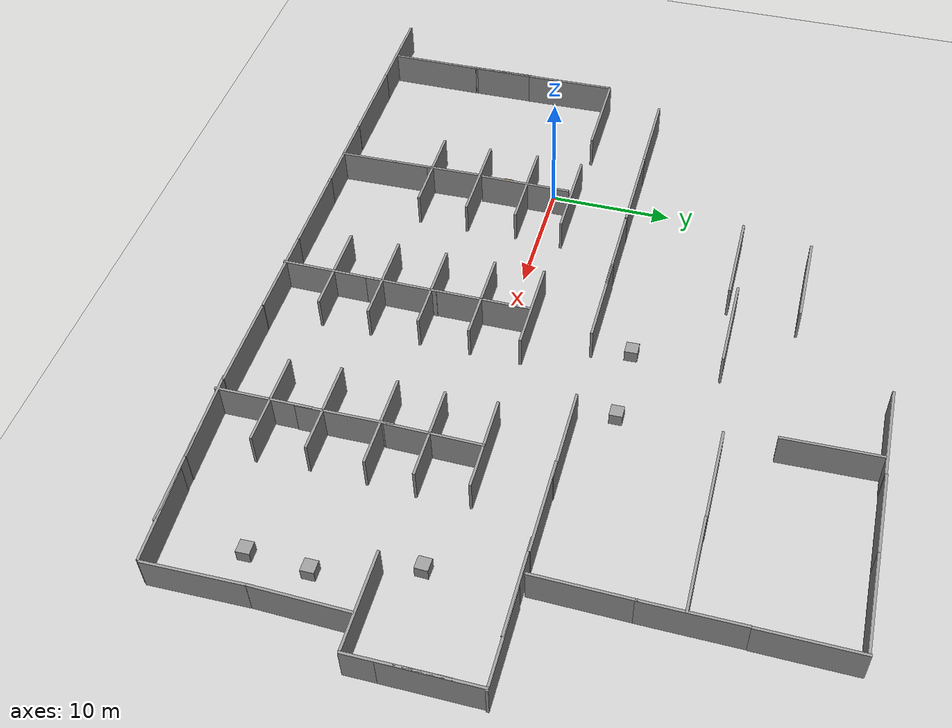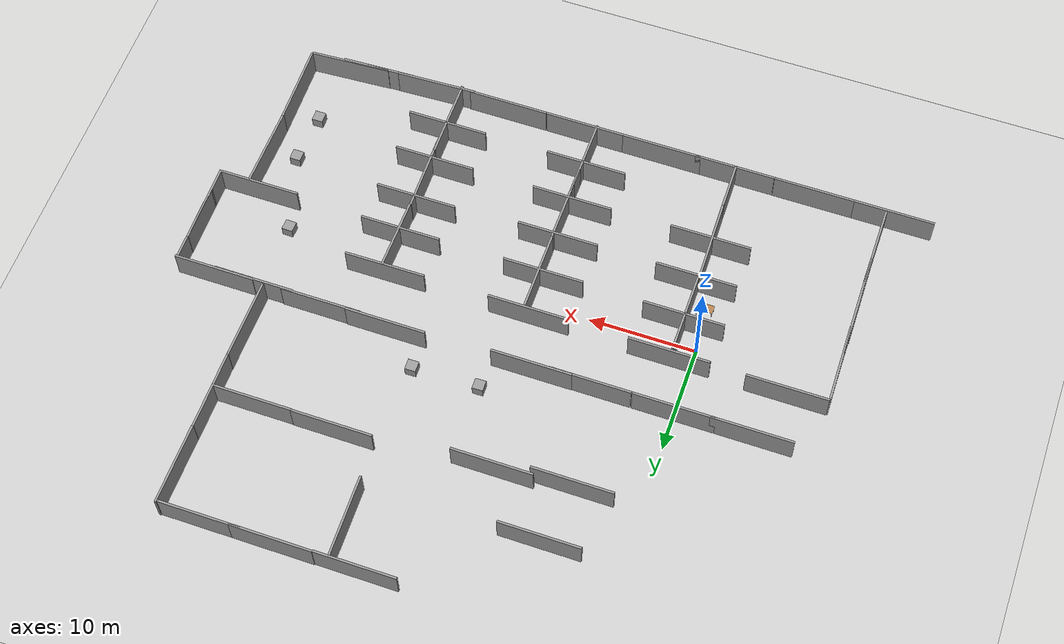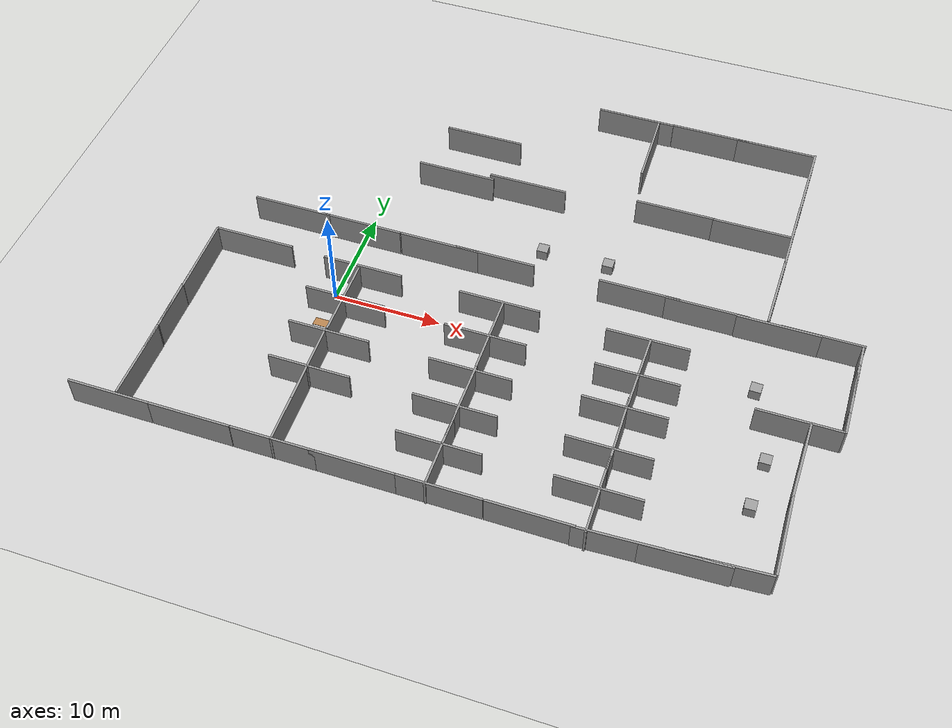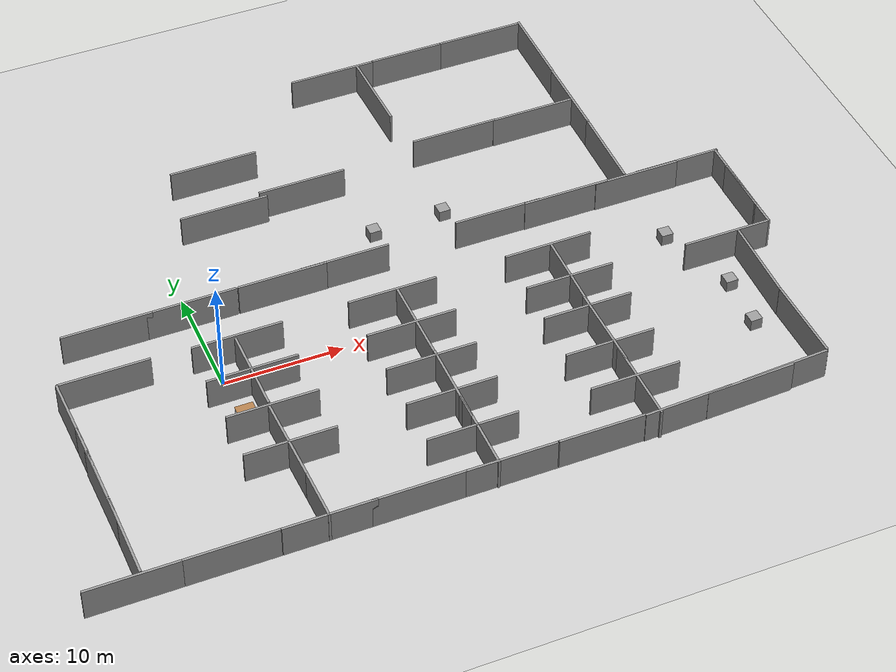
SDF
<sdf version="1.4">
 <world name="default">
  <light name="sun" type="directional">
   <pose>0 0 10 0 -0 0</pose>
   <diffuse>0.8 0.8 0.8 1</diffuse>
   <specular>0.2 0.2 0.2 1</specular>
   <attenuation>
    <range>1000</range>
    <constant>0.9</constant>
    <linear>0.01</linear>
    <quadratic>0.001</quadratic>
   </attenuation>
   <direction>-0.5 0.1 -0.9</direction>
  </light>
  <model name="ground_plane">
   <static>1</static>
   <link name="link">
    <collision name="collision">
     <geometry><plane><normal>0 0 1</normal><size>100 100</size></plane></geometry>
     <surface><friction><ode><mu>100</mu><mu2>50</mu2></ode></friction></surface>
    </collision>
    <visual name="visual">
     <cast_shadows>0</cast_shadows>
     <geometry><plane><normal>0 0 1</normal><size>100 100</size></plane></geometry>
     <material>
      <script><uri>file://media/materials/scripts/gazebo.material</uri><name>Gazebo/Grey</name></script>
     </material>
    </visual>
    <velocity_decay><linear>0</linear><angular>0</angular></velocity_decay>
   </link>
  </model>
  <physics type="ode">
   <max_step_size>0.001</max_step_size>
   <real_time_factor>1</real_time_factor>
   <real_time_update_rate>1000</real_time_update_rate>
   <gravity>0 0 -9.8</gravity>
  </physics>
  <scene><ambient>0.4 0.4 0.4 1</ambient><background>0.7 0.7 0.7 1</background><shadows>1</shadows></scene>
  <spherical_coordinates>
   <surface_model>EARTH_WGS84</surface_model>
   <latitude_deg>0</latitude_deg>
   <longitude_deg>0</longitude_deg>
   <elevation>0</elevation>
   <heading_deg>0</heading_deg>
  </spherical_coordinates>
  <model name="grey_wall_4">
   <static>1</static>
   <link name="link">
    <pose>0 0 1.4 0 -0 0</pose>
    <collision name="collision"><geometry><box><size>7.5 0.2 2.8</size></box></geometry></collision>
    <visual name="visual">
     <cast_shadows>0</cast_shadows>
     <geometry><box><size>7.5 0.2 2.8</size></box></geometry>
     <material>
      <script>
       <uri>model://grey_wall/materials/scripts</uri>
       <uri>model://grey_wall/materials/textures</uri>
       <name>vrc/grey_wall</name>
      </script>
     </material>
    </visual>
    <velocity_decay><linear>0</linear><angular>0</angular></velocity_decay>
   </link>
   <pose>1.76043 -2.02847 0 0 0 -1.57147</pose>
  </model>
  <model name="grey_wall_5">
   <static>1</static>
   <link name="link">
    <pose>0 0 1.4 0 -0 0</pose>
    <collision name="collision"><geometry><box><size>7.5 0.2 2.8</size></box></geometry></collision>
    <visual name="visual">
     <cast_shadows>0</cast_shadows>
     <geometry><box><size>7.5 0.2 2.8</size></box></geometry>
     <material>
      <script>
       <uri>model://grey_wall/materials/scripts</uri>
       <uri>model://grey_wall/materials/textures</uri>
       <name>vrc/grey_wall</name>
      </script>
     </material>
    </visual>
    <velocity_decay><linear>0</linear><angular>0</angular></velocity_decay>
   </link>
   <pose>-8.7306 2.15586 0 0 -0 0</pose>
  </model>
  <model name="grey_wall_6">
   <static>1</static>
   <link name="link">
    <pose>0 0 1.4 0 -0 0</pose>
    <collision name="collision"><geometry><box><size>7.5 0.2 2.8</size></box></geometry></collision>
    <visual name="visual">
     <cast_shadows>0</cast_shadows>
     <geometry><box><size>7.5 0.2 2.8</size></box></geometry>
     <material>
      <script>
       <uri>model://grey_wall/materials/scripts</uri>
       <uri>model://grey_wall/materials/textures</uri>
       <name>vrc/grey_wall</name>
      </script>
     </material>
    </visual>
    <velocity_decay><linear>0</linear><angular>0</angular></velocity_decay>
   </link>
   <pose>2 2 0 0 -0 0</pose>
  </model>
  <model name="grey_wall_7">
   <static>1</static>
   <link name="link">
    <pose>0 0 1.4 0 -0 0</pose>
    <collision name="collision"><geometry><box><size>7.5 0.2 2.8</size></box></geometry></collision>
    <visual name="visual">
     <cast_shadows>0</cast_shadows>
     <geometry><box><size>7.5 0.2 2.8</size></box></geometry>
     <material>
      <script>
       <uri>model://grey_wall/materials/scripts</uri>
       <uri>model://grey_wall/materials/textures</uri>
       <name>vrc/grey_wall</name>
      </script>
     </material>
    </visual>
    <velocity_decay><linear>0</linear><angular>0</angular></velocity_decay>
   </link>
   <pose>1.87031 -1.87399 0 0 -0 0</pose>
  </model>
  <model name="grey_wall_8">
   <static>1</static>
   <link name="link">
    <pose>0 0 1.4 0 -0 0</pose>
    <collision name="collision"><geometry><box><size>7.5 0.2 2.8</size></box></geometry></collision>
    <visual name="visual">
     <cast_shadows>0</cast_shadows>
     <geometry><box><size>7.5 0.2 2.8</size></box></geometry>
     <material>
      <script>
       <uri>model://grey_wall/materials/scripts</uri>
       <uri>model://grey_wall/materials/textures</uri>
       <name>vrc/grey_wall</name>
      </script>
     </material>
    </visual>
    <velocity_decay><linear>0</linear><angular>0</angular></velocity_decay>
   </link>
   <pose>15 2 0 0 -0 0</pose>
  </model>
  <model name="grey_wall_9">
   <static>1</static>
   <link name="link">
    <pose>0 0 1.4 0 -0 0</pose>
    <collision name="collision"><geometry><box><size>7.5 0.2 2.8</size></box></geometry></collision>
    <visual name="visual">
     <cast_shadows>0</cast_shadows>
     <geometry><box><size>7.5 0.2 2.8</size></box></geometry>
     <material>
      <script>
       <uri>model://grey_wall/materials/scripts</uri>
       <uri>model://grey_wall/materials/textures</uri>
       <name>vrc/grey_wall</name>
      </script>
     </material>
    </visual>
    <velocity_decay><linear>0</linear><angular>0</angular></velocity_decay>
   </link>
   <pose>1.75832 -9.88504 0 0 0 -1.54747</pose>
  </model>
  <model name="grey_wall_10">
   <static>1</static>
   <link name="link">
    <pose>0 0 1.4 0 -0 0</pose>
    <collision name="collision"><geometry><box><size>7.5 0.2 2.8</size></box></geometry></collision>
    <visual name="visual">
     <cast_shadows>0</cast_shadows>
     <geometry><box><size>7.5 0.2 2.8</size></box></geometry>
     <material>
      <script>
       <uri>model://grey_wall/materials/scripts</uri>
       <uri>model://grey_wall/materials/textures</uri>
       <name>vrc/grey_wall</name>
      </script>
     </material>
    </visual>
    <velocity_decay><linear>0</linear><angular>0</angular></velocity_decay>
   </link>
   <pose>2 -6 0 0 -0 0</pose>
  </model>
  <model name="grey_wall_11">
   <static>1</static>
   <link name="link">
    <pose>0 0 1.4 0 -0 0</pose>
    <collision name="collision"><geometry><box><size>7.5 0.2 2.8</size></box></geometry></collision>
    <visual name="visual">
     <cast_shadows>0</cast_shadows>
     <geometry><box><size>7.5 0.2 2.8</size></box></geometry>
     <material>
      <script>
       <uri>model://grey_wall/materials/scripts</uri>
       <uri>model://grey_wall/materials/textures</uri>
       <name>vrc/grey_wall</name>
      </script>
     </material>
    </visual>
    <velocity_decay><linear>0</linear><angular>0</angular></velocity_decay>
   </link>
   <pose>1.90559 -10.1209 0 0 -0 0</pose>
  </model>
  <model name="grey_wall_12">
   <static>1</static>
   <link name="link">
    <pose>0 0 1.4 0 -0 0</pose>
    <collision name="collision"><geometry><box><size>7.5 0.2 2.8</size></box></geometry></collision>
    <visual name="visual">
     <cast_shadows>0</cast_shadows>
     <geometry><box><size>7.5 0.2 2.8</size></box></geometry>
     <material>
      <script>
       <uri>model://grey_wall/materials/scripts</uri>
       <uri>model://grey_wall/materials/textures</uri>
       <name>vrc/grey_wall</name>
      </script>
     </material>
    </visual>
    <velocity_decay><linear>0</linear><angular>0</angular></velocity_decay>
   </link>
   <pose>2 -18 0 0 -0 0</pose>
  </model>
  <model name="grey_wall_13">
   <static>1</static>
   <link name="link">
    <pose>0 0 1.4 0 -0 0</pose>
    <collision name="collision"><geometry><box><size>7.5 0.2 2.8</size></box></geometry></collision>
    <visual name="visual">
     <cast_shadows>0</cast_shadows>
     <geometry><box><size>7.5 0.2 2.8</size></box></geometry>
     <material>
      <script>
       <uri>model://grey_wall/materials/scripts</uri>
       <uri>model://grey_wall/materials/textures</uri>
       <name>vrc/grey_wall</name>
      </script>
     </material>
    </visual>
    <velocity_decay><linear>0</linear><angular>0</angular></velocity_decay>
   </link>
   <pose>-5.54473 -17.9983 0 0 -0 0</pose>
  </model>
  <model name="grey_wall_14">
   <static>1</static>
   <link name="link">
    <pose>0 0 1.4 0 -0 0</pose>
    <collision name="collision"><geometry><box><size>7.5 0.2 2.8</size></box></geometry></collision>
    <visual name="visual">
     <cast_shadows>0</cast_shadows>
     <geometry><box><size>7.5 0.2 2.8</size></box></geometry>
     <material>
      <script>
       <uri>model://grey_wall/materials/scripts</uri>
       <uri>model://grey_wall/materials/textures</uri>
       <name>vrc/grey_wall</name>
      </script>
     </material>
    </visual>
    <velocity_decay><linear>0</linear><angular>0</angular></velocity_decay>
   </link>
   <pose>9 -18 0 0 -0 0</pose>
  </model>
  <model name="grey_wall_15">
   <static>1</static>
   <link name="link">
    <pose>0 0 1.4 0 -0 0</pose>
    <collision name="collision"><geometry><box><size>7.5 0.2 2.8</size></box></geometry></collision>
    <visual name="visual">
     <cast_shadows>0</cast_shadows>
     <geometry><box><size>7.5 0.2 2.8</size></box></geometry>
     <material>
      <script>
       <uri>model://grey_wall/materials/scripts</uri>
       <uri>model://grey_wall/materials/textures</uri>
       <name>vrc/grey_wall</name>
      </script>
     </material>
    </visual>
    <velocity_decay><linear>0</linear><angular>0</angular></velocity_decay>
   </link>
   <pose>16.4197 -18 0 0 -0 0</pose>
  </model>
  <model name="grey_wall_16">
   <static>1</static>
   <link name="link">
    <pose>0 0 1.4 0 -0 0</pose>
    <collision name="collision"><geometry><box><size>7.5 0.2 2.8</size></box></geometry></collision>
    <visual name="visual">
     <cast_shadows>0</cast_shadows>
     <geometry><box><size>7.5 0.2 2.8</size></box></geometry>
     <material>
      <script>
       <uri>model://grey_wall/materials/scripts</uri>
       <uri>model://grey_wall/materials/textures</uri>
       <name>vrc/grey_wall</name>
      </script>
     </material>
    </visual>
    <velocity_decay><linear>0</linear><angular>0</angular></velocity_decay>
   </link>
   <pose>-13 -18 0 0 -0 0</pose>
  </model>
  <model name="grey_wall_17">
   <static>1</static>
   <link name="link">
    <pose>0 0 1.4 0 -0 0</pose>
    <collision name="collision"><geometry><box><size>7.5 0.2 2.8</size></box></geometry></collision>
    <visual name="visual">
     <cast_shadows>0</cast_shadows>
     <geometry><box><size>7.5 0.2 2.8</size></box></geometry>
     <material>
      <script>
       <uri>model://grey_wall/materials/scripts</uri>
       <uri>model://grey_wall/materials/textures</uri>
       <name>vrc/grey_wall</name>
      </script>
     </material>
    </visual>
    <velocity_decay><linear>0</linear><angular>0</angular></velocity_decay>
   </link>
   <pose>1.85912 -14.3604 0 0 -0 1.58697</pose>
  </model>
  <model name="grey_wall_18">
   <static>1</static>
   <link name="link">
    <pose>0 0 1.4 0 -0 0</pose>
    <collision name="collision"><geometry><box><size>7.5 0.2 2.8</size></box></geometry></collision>
    <visual name="visual">
     <cast_shadows>0</cast_shadows>
     <geometry><box><size>7.5 0.2 2.8</size></box></geometry>
     <material>
      <script>
       <uri>model://grey_wall/materials/scripts</uri>
       <uri>model://grey_wall/materials/textures</uri>
       <name>vrc/grey_wall</name>
      </script>
     </material>
    </visual>
    <velocity_decay><linear>0</linear><angular>0</angular></velocity_decay>
   </link>
   <pose>-12.3607 -8.8908 0 0 -0 1.58635</pose>
  </model>
  <model name="grey_wall_19">
   <static>1</static>
   <link name="link">
    <pose>0 0 1.4 0 -0 0</pose>
    <collision name="collision"><geometry><box><size>7.5 0.2 2.8</size></box></geometry></collision>
    <visual name="visual">
     <cast_shadows>0</cast_shadows>
     <geometry><box><size>7.5 0.2 2.8</size></box></geometry>
     <material>
      <script>
       <uri>model://grey_wall/materials/scripts</uri>
       <uri>model://grey_wall/materials/textures</uri>
       <name>vrc/grey_wall</name>
      </script>
     </material>
    </visual>
    <velocity_decay><linear>0</linear><angular>0</angular></velocity_decay>
   </link>
   <pose>-12.3584 -6.41598 0 0 -0 1.58097</pose>
  </model>
  <model name="grey_wall_20">
   <static>1</static>
   <link name="link">
    <pose>0 0 1.4 0 -0 0</pose>
    <collision name="collision"><geometry><box><size>7.5 0.2 2.8</size></box></geometry></collision>
    <visual name="visual">
     <cast_shadows>0</cast_shadows>
     <geometry><box><size>7.5 0.2 2.8</size></box></geometry>
     <material>
      <script>
       <uri>model://grey_wall/materials/scripts</uri>
       <uri>model://grey_wall/materials/textures</uri>
       <name>vrc/grey_wall</name>
      </script>
     </material>
    </visual>
    <velocity_decay><linear>0</linear><angular>0</angular></velocity_decay>
   </link>
   <pose>-12.3008 -14.091 0 0 -0 1.57033</pose>
  </model>
  <model name="grey_wall_21">
   <static>1</static>
   <link name="link">
    <pose>0 0 1.4 0 -0 0</pose>
    <collision name="collision"><geometry><box><size>7.5 0.2 2.8</size></box></geometry></collision>
    <visual name="visual">
     <cast_shadows>0</cast_shadows>
     <geometry><box><size>7.5 0.2 2.8</size></box></geometry>
     <material>
      <script>
       <uri>model://grey_wall/materials/scripts</uri>
       <uri>model://grey_wall/materials/textures</uri>
       <name>vrc/grey_wall</name>
      </script>
     </material>
    </visual>
    <velocity_decay><linear>0</linear><angular>0</angular></velocity_decay>
   </link>
   <pose>-12.4167 -1.56824 0 0 -0 1.5898</pose>
  </model>
  <model name="grey_wall_22">
   <static>1</static>
   <link name="link">
    <pose>0 0 1.4 0 -0 0</pose>
    <collision name="collision"><geometry><box><size>7.5 0.2 2.8</size></box></geometry></collision>
    <visual name="visual">
     <cast_shadows>0</cast_shadows>
     <geometry><box><size>7.5 0.2 2.8</size></box></geometry>
     <material>
      <script>
       <uri>model://grey_wall/materials/scripts</uri>
       <uri>model://grey_wall/materials/textures</uri>
       <name>vrc/grey_wall</name>
      </script>
     </material>
    </visual>
    <velocity_decay><linear>0</linear><angular>0</angular></velocity_decay>
   </link>
   <pose>15.3355 -14.4397 0 0 -0 1.56473</pose>
  </model>
  <model name="grey_wall_23">
   <static>1</static>
   <link name="link">
    <pose>0 0 1.4 0 -0 0</pose>
    <collision name="collision"><geometry><box><size>7.5 0.2 2.8</size></box></geometry></collision>
    <visual name="visual">
     <cast_shadows>0</cast_shadows>
     <geometry><box><size>7.5 0.2 2.8</size></box></geometry>
     <material>
      <script>
       <uri>model://grey_wall/materials/scripts</uri>
       <uri>model://grey_wall/materials/textures</uri>
       <name>vrc/grey_wall</name>
      </script>
     </material>
    </visual>
    <velocity_decay><linear>0</linear><angular>0</angular></velocity_decay>
   </link>
   <pose>28.5277 2.01083 0 0 -0 0.006082</pose>
  </model>
  <model name="grey_wall_24">
   <static>1</static>
   <link name="link">
    <pose>0 0 1.4 0 -0 0</pose>
    <collision name="collision"><geometry><box><size>7.5 0.2 2.8</size></box></geometry></collision>
    <visual name="visual">
     <cast_shadows>0</cast_shadows>
     <geometry><box><size>7.5 0.2 2.8</size></box></geometry>
     <material>
      <script>
       <uri>model://grey_wall/materials/scripts</uri>
       <uri>model://grey_wall/materials/textures</uri>
       <name>vrc/grey_wall</name>
      </script>
     </material>
    </visual>
    <velocity_decay><linear>0</linear><angular>0</angular></velocity_decay>
   </link>
   <pose>15.3834 -1.8248 0 0 -0 1.57032</pose>
  </model>
  <model name="grey_wall_25">
   <static>1</static>
   <link name="link">
    <pose>0 0 1.4 0 -0 0</pose>
    <collision name="collision"><geometry><box><size>7.5 0.2 2.8</size></box></geometry></collision>
    <visual name="visual">
     <cast_shadows>0</cast_shadows>
     <geometry><box><size>7.5 0.2 2.8</size></box></geometry>
     <material>
      <script>
       <uri>model://grey_wall/materials/scripts</uri>
       <uri>model://grey_wall/materials/textures</uri>
       <name>vrc/grey_wall</name>
      </script>
     </material>
    </visual>
    <velocity_decay><linear>0</linear><angular>0</angular></velocity_decay>
   </link>
   <pose>15.3725 -9.31245 0 0 -0 1.56183</pose>
  </model>
  <model name="grey_wall_26">
   <static>1</static>
   <link name="link">
    <pose>0 0 1.4 0 -0 0</pose>
    <collision name="collision"><geometry><box><size>7.5 0.2 2.8</size></box></geometry></collision>
    <visual name="visual">
     <cast_shadows>0</cast_shadows>
     <geometry><box><size>7.5 0.2 2.8</size></box></geometry>
     <material>
      <script>
       <uri>model://grey_wall/materials/scripts</uri>
       <uri>model://grey_wall/materials/textures</uri>
       <name>vrc/grey_wall</name>
      </script>
     </material>
    </visual>
    <velocity_decay><linear>0</linear><angular>0</angular></velocity_decay>
   </link>
   <pose>28.6194 -14.5236 0 0 -0 1.57239</pose>
  </model>
  <model name="grey_wall_27">
   <static>1</static>
   <link name="link">
    <pose>0 0 1.4 0 -0 0</pose>
    <collision name="collision"><geometry><box><size>7.5 0.2 2.8</size></box></geometry></collision>
    <visual name="visual">
     <cast_shadows>0</cast_shadows>
     <geometry><box><size>7.5 0.2 2.8</size></box></geometry>
     <material>
      <script>
       <uri>model://grey_wall/materials/scripts</uri>
       <uri>model://grey_wall/materials/textures</uri>
       <name>vrc/grey_wall</name>
      </script>
     </material>
    </visual>
    <velocity_decay><linear>0</linear><angular>0</angular></velocity_decay>
   </link>
   <pose>15 -2 0 0 -0 0</pose>
  </model>
  <model name="grey_wall_28">
   <static>1</static>
   <link name="link">
    <pose>0 0 1.4 0 -0 0</pose>
    <collision name="collision"><geometry><box><size>7.5 0.2 2.8</size></box></geometry></collision>
    <visual name="visual">
     <cast_shadows>0</cast_shadows>
     <geometry><box><size>7.5 0.2 2.8</size></box></geometry>
     <material>
      <script>
       <uri>model://grey_wall/materials/scripts</uri>
       <uri>model://grey_wall/materials/textures</uri>
       <name>vrc/grey_wall</name>
      </script>
     </material>
    </visual>
    <velocity_decay><linear>0</linear><angular>0</angular></velocity_decay>
   </link>
   <pose>15 -6 0 0 -0 0</pose>
  </model>
  <model name="grey_wall_29">
   <static>1</static>
   <link name="link">
    <pose>0 0 1.4 0 -0 0</pose>
    <collision name="collision"><geometry><box><size>7.5 0.2 2.8</size></box></geometry></collision>
    <visual name="visual">
     <cast_shadows>0</cast_shadows>
     <geometry><box><size>7.5 0.2 2.8</size></box></geometry>
     <material>
      <script>
       <uri>model://grey_wall/materials/scripts</uri>
       <uri>model://grey_wall/materials/textures</uri>
       <name>vrc/grey_wall</name>
      </script>
     </material>
    </visual>
    <velocity_decay><linear>0</linear><angular>0</angular></velocity_decay>
   </link>
   <pose>15 -10 0 0 -0 0</pose>
  </model>
  <model name="grey_wall_30">
   <static>1</static>
   <link name="link">
    <pose>0 0 1.4 0 -0 0</pose>
    <collision name="collision"><geometry><box><size>7.5 0.2 2.8</size></box></geometry></collision>
    <visual name="visual">
     <cast_shadows>0</cast_shadows>
     <geometry><box><size>7.5 0.2 2.8</size></box></geometry>
     <material>
      <script>
       <uri>model://grey_wall/materials/scripts</uri>
       <uri>model://grey_wall/materials/textures</uri>
       <name>vrc/grey_wall</name>
      </script>
     </material>
    </visual>
    <velocity_decay><linear>0</linear><angular>0</angular></velocity_decay>
   </link>
   <pose>12.9504 7.03198 0 0 -0 0</pose>
  </model>
  <model name="grey_wall_31">
   <static>1</static>
   <link name="link">
    <pose>0 0 1.4 0 -0 0</pose>
    <collision name="collision"><geometry><box><size>7.5 0.2 2.8</size></box></geometry></collision>
    <visual name="visual">
     <cast_shadows>0</cast_shadows>
     <geometry><box><size>7.5 0.2 2.8</size></box></geometry>
     <material>
      <script>
       <uri>model://grey_wall/materials/scripts</uri>
       <uri>model://grey_wall/materials/textures</uri>
       <name>vrc/grey_wall</name>
      </script>
     </material>
    </visual>
    <velocity_decay><linear>0</linear><angular>0</angular></velocity_decay>
   </link>
   <pose>7.59221 7 0 0 -0 0</pose>
  </model>
  <model name="grey_wall_32">
   <static>1</static>
   <link name="link">
    <pose>0 0 1.4 0 -0 0</pose>
    <collision name="collision"><geometry><box><size>7.5 0.2 2.8</size></box></geometry></collision>
    <visual name="visual">
     <cast_shadows>0</cast_shadows>
     <geometry><box><size>7.5 0.2 2.8</size></box></geometry>
     <material>
      <script>
       <uri>model://grey_wall/materials/scripts</uri>
       <uri>model://grey_wall/materials/textures</uri>
       <name>vrc/grey_wall</name>
      </script>
     </material>
    </visual>
    <velocity_decay><linear>0</linear><angular>0</angular></velocity_decay>
   </link>
   <pose>0 7 0 0 -0 0</pose>
  </model>
  <model name="grey_wall_33">
   <static>1</static>
   <link name="link">
    <pose>0 0 1.4 0 -0 0</pose>
    <collision name="collision"><geometry><box><size>7.5 0.2 2.8</size></box></geometry></collision>
    <visual name="visual">
     <cast_shadows>0</cast_shadows>
     <geometry><box><size>7.5 0.2 2.8</size></box></geometry>
     <material>
      <script>
       <uri>model://grey_wall/materials/scripts</uri>
       <uri>model://grey_wall/materials/textures</uri>
       <name>vrc/grey_wall</name>
      </script>
     </material>
    </visual>
    <velocity_decay><linear>0</linear><angular>0</angular></velocity_decay>
   </link>
   <pose>-7 7 0 0 -0 0</pose>
  </model>
  <model name="table">
   <static>1</static>
   <link name="link">
    <collision name="surface">
     <pose>0 0 1 0 -0 0</pose>
     <geometry><box><size>1.5 0.8 0.03</size></box></geometry>
     <surface><friction><ode><mu>0.6</mu><mu2>0.6</mu2></ode></friction></surface>
    </collision>
    <visual name="visual1">
     <pose>0 0 1 0 -0 0</pose>
     <geometry><box><size>1.5 0.8 0.03</size></box></geometry>
     <material>
      <script><uri>file://media/materials/scripts/gazebo.material</uri><name>Gazebo/Wood</name></script>
     </material>
    </visual>
    <collision name="front_left_leg">
     <pose>0.68 0.38 0.5 0 -0 0</pose>
     <geometry><cylinder><radius>0.02</radius><length>1</length></cylinder></geometry>
    </collision>
    <visual name="front_left_leg">
     <pose>0.68 0.38 0.5 0 -0 0</pose>
     <geometry><cylinder><radius>0.02</radius><length>1</length></cylinder></geometry>
     <material>
      <script><uri>file://media/materials/scripts/gazebo.material</uri><name>Gazebo/Grey</name></script>
     </material>
    </visual>
    <collision name="front_right_leg">
     <pose>0.68 -0.38 0.5 0 -0 0</pose>
     <geometry><cylinder><radius>0.02</radius><length>1</length></cylinder></geometry>
    </collision>
    <visual name="front_right_leg">
     <pose>0.68 -0.38 0.5 0 -0 0</pose>
     <geometry><cylinder><radius>0.02</radius><length>1</length></cylinder></geometry>
     <material>
      <script><uri>file://media/materials/scripts/gazebo.material</uri><name>Gazebo/Grey</name></script>
     </material>
    </visual>
    <collision name="back_right_leg">
     <pose>-0.68 -0.38 0.5 0 -0 0</pose>
     <geometry><cylinder><radius>0.02</radius><length>1</length></cylinder></geometry>
    </collision>
    <visual name="back_right_leg">
     <pose>-0.68 -0.38 0.5 0 -0 0</pose>
     <geometry><cylinder><radius>0.02</radius><length>1</length></cylinder></geometry>
     <material>
      <script><uri>file://media/materials/scripts/gazebo.material</uri><name>Gazebo/Grey</name></script>
     </material>
    </visual>
    <collision name="back_left_leg">
     <pose>-0.68 0.38 0.5 0 -0 0</pose>
     <geometry><cylinder><radius>0.02</radius><length>1</length></cylinder></geometry>
    </collision>
    <visual name="back_left_leg">
     <pose>-0.68 0.38 0.5 0 -0 0</pose>
     <geometry><cylinder><radius>0.02</radius><length>1</length></cylinder></geometry>
     <material>
      <script><uri>file://media/materials/scripts/gazebo.material</uri><name>Gazebo/Grey</name></script>
     </material>
    </visual>
    <velocity_decay><linear>0</linear><angular>0</angular></velocity_decay>
   </link>
   <pose>0.424127 -4 0 0 -0 0</pose>
  </model>
  <model name="grey_wall_34">
   <static>1</static>
   <link name="link">
    <pose>0 0 1.4 0 -0 0</pose>
    <collision name="collision"><geometry><box><size>7.5 0.2 2.8</size></box></geometry></collision>
    <visual name="visual">
     <cast_shadows>0</cast_shadows>
     <geometry><box><size>7.5 0.2 2.8</size></box></geometry>
     <material>
      <script>
       <uri>model://grey_wall/materials/scripts</uri>
       <uri>model://grey_wall/materials/textures</uri>
       <name>vrc/grey_wall</name>
      </script>
     </material>
    </visual>
    <velocity_decay><linear>0</linear><angular>0</angular></velocity_decay>
   </link>
   <pose>15 -14 0 0 -0 0</pose>
  </model>
  <model name="grey_wall_35">
   <static>1</static>
   <link name="link">
    <pose>0 0 1.4 0 -0 0</pose>
    <collision name="collision"><geometry><box><size>7.5 0.2 2.8</size></box></geometry></collision>
    <visual name="visual">
     <cast_shadows>0</cast_shadows>
     <geometry><box><size>7.5 0.2 2.8</size></box></geometry>
     <material>
      <script>
       <uri>model://grey_wall/materials/scripts</uri>
       <uri>model://grey_wall/materials/textures</uri>
       <name>vrc/grey_wall</name>
      </script>
     </material>
    </visual>
    <velocity_decay><linear>0</linear><angular>0</angular></velocity_decay>
   </link>
   <pose>26.442 7.30167 0 0 -0 0</pose>
  </model>
  <model name="grey_wall_36">
   <static>1</static>
   <link name="link">
    <pose>0 0 1.4 0 -0 0</pose>
    <collision name="collision"><geometry><box><size>7.5 0.2 2.8</size></box></geometry></collision>
    <visual name="visual">
     <cast_shadows>0</cast_shadows>
     <geometry><box><size>7.5 0.2 2.8</size></box></geometry>
     <material>
      <script>
       <uri>model://grey_wall/materials/scripts</uri>
       <uri>model://grey_wall/materials/textures</uri>
       <name>vrc/grey_wall</name>
      </script>
     </material>
    </visual>
    <velocity_decay><linear>0</linear><angular>0</angular></velocity_decay>
   </link>
   <pose>24 -18 0 0 -0 0</pose>
  </model>
  <model name="grey_wall_37">
   <static>1</static>
   <link name="link">
    <pose>0 0 1.4 0 -0 0</pose>
    <collision name="collision"><geometry><box><size>7.5 0.2 2.8</size></box></geometry></collision>
    <visual name="visual">
     <cast_shadows>0</cast_shadows>
     <geometry><box><size>7.5 0.2 2.8</size></box></geometry>
     <material>
      <script>
       <uri>model://grey_wall/materials/scripts</uri>
       <uri>model://grey_wall/materials/textures</uri>
       <name>vrc/grey_wall</name>
      </script>
     </material>
    </visual>
    <velocity_decay><linear>0</linear><angular>0</angular></velocity_decay>
   </link>
   <pose>31.1096 -17.9204 0 0 -0 0.039556</pose>
  </model>
  <model name="grey_wall_38">
   <static>1</static>
   <link name="link">
    <pose>0 0 1.4 0 -0 0</pose>
    <collision name="collision"><geometry><box><size>7.5 0.2 2.8</size></box></geometry></collision>
    <visual name="visual">
     <cast_shadows>0</cast_shadows>
     <geometry><box><size>7.5 0.2 2.8</size></box></geometry>
     <material>
      <script>
       <uri>model://grey_wall/materials/scripts</uri>
       <uri>model://grey_wall/materials/textures</uri>
       <name>vrc/grey_wall</name>
      </script>
     </material>
    </visual>
    <velocity_decay><linear>0</linear><angular>0</angular></velocity_decay>
   </link>
   <pose>32.5681 7.25099 0 0 -0 0</pose>
  </model>
  <model name="grey_wall_39">
   <static>1</static>
   <link name="link">
    <pose>0 0 1.4 0 -0 0</pose>
    <collision name="collision"><geometry><box><size>7.5 0.2 2.8</size></box></geometry></collision>
    <visual name="visual">
     <cast_shadows>0</cast_shadows>
     <geometry><box><size>7.5 0.2 2.8</size></box></geometry>
     <material>
      <script>
       <uri>model://grey_wall/materials/scripts</uri>
       <uri>model://grey_wall/materials/textures</uri>
       <name>vrc/grey_wall</name>
      </script>
     </material>
    </visual>
    <velocity_decay><linear>0</linear><angular>0</angular></velocity_decay>
   </link>
   <pose>28.5921 -1.97337 0 0 -0 0</pose>
  </model>
  <model name="grey_wall_40">
   <static>1</static>
   <link name="link">
    <pose>0 0 1.4 0 -0 0</pose>
    <collision name="collision"><geometry><box><size>7.5 0.2 2.8</size></box></geometry></collision>
    <visual name="visual">
     <cast_shadows>0</cast_shadows>
     <geometry><box><size>7.5 0.2 2.8</size></box></geometry>
     <material>
      <script>
       <uri>model://grey_wall/materials/scripts</uri>
       <uri>model://grey_wall/materials/textures</uri>
       <name>vrc/grey_wall</name>
      </script>
     </material>
    </visual>
    <velocity_decay><linear>0</linear><angular>0</angular></velocity_decay>
   </link>
   <pose>28.6271 -8.34501 0 0 -0 1.58026</pose>
  </model>
  <model name="grey_wall_41">
   <static>1</static>
   <link name="link">
    <pose>0 0 1.4 0 -0 0</pose>
    <collision name="collision"><geometry><box><size>7.5 0.2 2.8</size></box></geometry></collision>
    <visual name="visual">
     <cast_shadows>0</cast_shadows>
     <geometry><box><size>7.5 0.2 2.8</size></box></geometry>
     <material>
      <script>
       <uri>model://grey_wall/materials/scripts</uri>
       <uri>model://grey_wall/materials/textures</uri>
       <name>vrc/grey_wall</name>
      </script>
     </material>
    </visual>
    <velocity_decay><linear>0</linear><angular>0</angular></velocity_decay>
   </link>
   <pose>28.6946 -1.65305 0 0 -0 1.55442</pose>
  </model>
  <model name="grey_wall_42">
   <static>1</static>
   <link name="link">
    <pose>0 0 1.4 0 -0 0</pose>
    <collision name="collision"><geometry><box><size>7.5 0.2 2.8</size></box></geometry></collision>
    <visual name="visual">
     <cast_shadows>0</cast_shadows>
     <geometry><box><size>7.5 0.2 2.8</size></box></geometry>
     <material>
      <script>
       <uri>model://grey_wall/materials/scripts</uri>
       <uri>model://grey_wall/materials/textures</uri>
       <name>vrc/grey_wall</name>
      </script>
     </material>
    </visual>
    <velocity_decay><linear>0</linear><angular>0</angular></velocity_decay>
   </link>
   <pose>46.2687 1.35159 0 0 -0 1.57033</pose>
  </model>
  <model name="grey_wall_43">
   <static>1</static>
   <link name="link">
    <pose>0 0 1.4 0 -0 0</pose>
    <collision name="collision"><geometry><box><size>7.5 0.2 2.8</size></box></geometry></collision>
    <visual name="visual">
     <cast_shadows>0</cast_shadows>
     <geometry><box><size>7.5 0.2 2.8</size></box></geometry>
     <material>
      <script>
       <uri>model://grey_wall/materials/scripts</uri>
       <uri>model://grey_wall/materials/textures</uri>
       <name>vrc/grey_wall</name>
      </script>
     </material>
    </visual>
    <velocity_decay><linear>0</linear><angular>0</angular></velocity_decay>
   </link>
   <pose>38.9668 7.18558 0 0 -0 0</pose>
  </model>
  <model name="grey_wall_44">
   <static>1</static>
   <link name="link">
    <pose>0 0 1.4 0 -0 0</pose>
    <collision name="collision"><geometry><box><size>7.5 0.2 2.8</size></box></geometry></collision>
    <visual name="visual">
     <cast_shadows>0</cast_shadows>
     <geometry><box><size>7.5 0.2 2.8</size></box></geometry>
     <material>
      <script>
       <uri>model://grey_wall/materials/scripts</uri>
       <uri>model://grey_wall/materials/textures</uri>
       <name>vrc/grey_wall</name>
      </script>
     </material>
    </visual>
    <velocity_decay><linear>0</linear><angular>0</angular></velocity_decay>
   </link>
   <pose>28.4566 -5.63207 0 0 -0 0</pose>
  </model>
  <model name="grey_wall_45">
   <static>1</static>
   <link name="link">
    <pose>0 0 1.4 0 -0 0</pose>
    <collision name="collision"><geometry><box><size>7.5 0.2 2.8</size></box></geometry></collision>
    <visual name="visual">
     <cast_shadows>0</cast_shadows>
     <geometry><box><size>7.5 0.2 2.8</size></box></geometry>
     <material>
      <script>
       <uri>model://grey_wall/materials/scripts</uri>
       <uri>model://grey_wall/materials/textures</uri>
       <name>vrc/grey_wall</name>
      </script>
     </material>
    </visual>
    <velocity_decay><linear>0</linear><angular>0</angular></velocity_decay>
   </link>
   <pose>28.3028 -9.98143 0 0 -0 0</pose>
  </model>
  <model name="grey_wall_46">
   <static>1</static>
   <link name="link">
    <pose>0 0 1.4 0 -0 0</pose>
    <collision name="collision"><geometry><box><size>7.5 0.2 2.8</size></box></geometry></collision>
    <visual name="visual">
     <cast_shadows>0</cast_shadows>
     <geometry><box><size>7.5 0.2 2.8</size></box></geometry>
     <material>
      <script>
       <uri>model://grey_wall/materials/scripts</uri>
       <uri>model://grey_wall/materials/textures</uri>
       <name>vrc/grey_wall</name>
      </script>
     </material>
    </visual>
    <velocity_decay><linear>0</linear><angular>0</angular></velocity_decay>
   </link>
   <pose>28.5172 -14 0 0 -0 0</pose>
  </model>
  <model name="grey_wall_47">
   <static>1</static>
   <link name="link">
    <pose>0 0 1.4 0 -0 0</pose>
    <collision name="collision"><geometry><box><size>7.5 0.2 2.8</size></box></geometry></collision>
    <visual name="visual">
     <cast_shadows>0</cast_shadows>
     <geometry><box><size>7.5 0.2 2.8</size></box></geometry>
     <material>
      <script>
       <uri>model://grey_wall/materials/scripts</uri>
       <uri>model://grey_wall/materials/textures</uri>
       <name>vrc/grey_wall</name>
      </script>
     </material>
    </visual>
    <velocity_decay><linear>0</linear><angular>0</angular></velocity_decay>
   </link>
   <pose>36.4718 -17.7339 0 0 -0 0.037082</pose>
  </model>
  <model name="grey_wall_48">
   <static>1</static>
   <link name="link">
    <pose>0 0 1.4 0 -0 0</pose>
    <collision name="collision"><geometry><box><size>7.5 0.2 2.8</size></box></geometry></collision>
    <visual name="visual">
     <cast_shadows>0</cast_shadows>
     <geometry><box><size>7.5 0.2 2.8</size></box></geometry>
     <material>
      <script>
       <uri>model://grey_wall/materials/scripts</uri>
       <uri>model://grey_wall/materials/textures</uri>
       <name>vrc/grey_wall</name>
      </script>
     </material>
    </visual>
    <velocity_decay><linear>0</linear><angular>0</angular></velocity_decay>
   </link>
   <pose>43.3122 -13.4838 0 0 0 -1.55664</pose>
  </model>
  <model name="grey_wall_49">
   <static>1</static>
   <link name="link">
    <pose>0 0 1.4 0 -0 0</pose>
    <collision name="collision"><geometry><box><size>7.5 0.2 2.8</size></box></geometry></collision>
    <visual name="visual">
     <cast_shadows>0</cast_shadows>
     <geometry><box><size>7.5 0.2 2.8</size></box></geometry>
     <material>
      <script>
       <uri>model://grey_wall/materials/scripts</uri>
       <uri>model://grey_wall/materials/textures</uri>
       <name>vrc/grey_wall</name>
      </script>
     </material>
    </visual>
    <velocity_decay><linear>0</linear><angular>0</angular></velocity_decay>
   </link>
   <pose>39.5755 -17.5119 0 0 0 -3.08695</pose>
  </model>
  <model name="grey_wall_50">
   <static>1</static>
   <link name="link">
    <pose>0 0 1.4 0 -0 0</pose>
    <collision name="collision"><geometry><box><size>7.5 0.2 2.8</size></box></geometry></collision>
    <visual name="visual">
     <cast_shadows>0</cast_shadows>
     <geometry><box><size>7.5 0.2 2.8</size></box></geometry>
     <material>
      <script>
       <uri>model://grey_wall/materials/scripts</uri>
       <uri>model://grey_wall/materials/textures</uri>
       <name>vrc/grey_wall</name>
      </script>
     </material>
    </visual>
    <velocity_decay><linear>0</linear><angular>0</angular></velocity_decay>
   </link>
   <pose>46.2848 3.5302 0 0 0 -1.57549</pose>
  </model>
  <model name="grey_wall_51">
   <static>1</static>
   <link name="link">
    <pose>0 0 1.4 0 -0 0</pose>
    <collision name="collision"><geometry><box><size>7.5 0.2 2.8</size></box></geometry></collision>
    <visual name="visual">
     <cast_shadows>0</cast_shadows>
     <geometry><box><size>7.5 0.2 2.8</size></box></geometry>
     <material>
      <script>
       <uri>model://grey_wall/materials/scripts</uri>
       <uri>model://grey_wall/materials/textures</uri>
       <name>vrc/grey_wall</name>
      </script>
     </material>
    </visual>
    <velocity_decay><linear>0</linear><angular>0</angular></velocity_decay>
   </link>
   <pose>43.3456 -6.10017 0 0 0 -1.59608</pose>
  </model>
  <model name="grey_wall_52">
   <static>1</static>
   <link name="link">
    <pose>0 0 1.4 0 -0 0</pose>
    <collision name="collision"><geometry><box><size>7.5 0.2 2.8</size></box></geometry></collision>
    <visual name="visual">
     <cast_shadows>0</cast_shadows>
     <geometry><box><size>7.5 0.2 2.8</size></box></geometry>
     <material>
      <script>
       <uri>model://grey_wall/materials/scripts</uri>
       <uri>model://grey_wall/materials/textures</uri>
       <name>vrc/grey_wall</name>
      </script>
     </material>
    </visual>
    <velocity_decay><linear>0</linear><angular>0</angular></velocity_decay>
   </link>
   <pose>42.7617 7.2367 0 0 -0 0</pose>
  </model>
  <model name="grey_wall_53">
   <static>1</static>
   <link name="link">
    <pose>0 0 1.4 0 -0 0</pose>
    <collision name="collision"><geometry><box><size>7.5 0.2 2.8</size></box></geometry></collision>
    <visual name="visual">
     <cast_shadows>0</cast_shadows>
     <geometry><box><size>7.5 0.2 2.8</size></box></geometry>
     <material>
      <script>
       <uri>model://grey_wall/materials/scripts</uri>
       <uri>model://grey_wall/materials/textures</uri>
       <name>vrc/grey_wall</name>
      </script>
     </material>
    </visual>
    <velocity_decay><linear>0</linear><angular>0</angular></velocity_decay>
   </link>
   <pose>42.4513 -2.31914 0 0 -0 0</pose>
  </model>
  <model name="unit_box_4">
   <pose>38.3992 0.590445 1.40877 -1.3e-05 -1e-06 -0.037288</pose>
   <link name="link">
    <inertial>
     <mass>1</mass>
     <inertia><ixx>1</ixx><ixy>0</ixy><ixz>0</ixz><iyy>1</iyy><iyz>0</iyz><izz>1</izz></inertia>
    </inertial>
    <collision name="collision"><geometry><box><size>0.468938 5.87266 2.81761</size></box></geometry></collision>
    <visual name="visual">
     <geometry><box><size>1 1 1</size></box></geometry>
     <material>
      <script><uri>file://media/materials/scripts/gazebo.material</uri><name>Gazebo/Grey</name></script>
     </material>
    </visual>
    <velocity_decay><linear>0</linear><angular>0</angular></velocity_decay>
   </link>
   <static>0</static>
  </model>
  <model name="unit_box_5">
   <pose>40.56 -6.52606 1.65153 0 2e-06 0.000727</pose>
   <link name="link">
    <inertial>
     <mass>1</mass>
     <inertia><ixx>1</ixx><ixy>0</ixy><ixz>0</ixz><iyy>1</iyy><iyz>0</iyz><izz>1</izz></inertia>
    </inertial>
    <collision name="collision"><geometry><box><size>4.65022 0.477944 3.30307</size></box></geometry></collision>
    <visual name="visual">
     <geometry><box><size>1 1 1</size></box></geometry>
     <material>
      <script><uri>file://media/materials/scripts/gazebo.material</uri><name>Gazebo/Grey</name></script>
     </material>
    </visual>
    <velocity_decay><linear>0</linear><angular>0</angular></velocity_decay>
   </link>
   <static>0</static>
  </model>
  <model name="unit_box_6">
   <pose>40.2613 -11.1822 1.63184 1.32349e-23 4e-06 0.015384</pose>
   <link name="link">
    <inertial>
     <mass>1</mass>
     <inertia><ixx>1</ixx><ixy>0</ixy><ixz>0</ixz><iyy>1</iyy><iyz>0</iyz><izz>1</izz></inertia>
    </inertial>
    <collision name="collision"><geometry><box><size>5.28275 0.556459 3.2637</size></box></geometry></collision>
    <visual name="visual">
     <geometry><box><size>1 1 1</size></box></geometry>
     <material>
      <script><uri>file://media/materials/scripts/gazebo.material</uri><name>Gazebo/Grey</name></script>
     </material>
    </visual>
    <velocity_decay><linear>0</linear><angular>0</angular></velocity_decay>
   </link>
   <static>0</static>
  </model>
  <model name="unit_box_7">
   <pose>16.6413 10.1617 1.46553 -9e-06 2.64698e-23 0.018097</pose>
   <link name="link">
    <inertial>
     <mass>1</mass>
     <inertia><ixx>1</ixx><ixy>0</ixy><ixz>0</ixz><iyy>1</iyy><iyz>0</iyz><izz>1</izz></inertia>
    </inertial>
    <collision name="collision"><geometry><box><size>0.336266 5.64091 2.93111</size></box></geometry></collision>
    <visual name="visual">
     <geometry><box><size>1 1 1</size></box></geometry>
     <material>
      <script><uri>file://media/materials/scripts/gazebo.material</uri><name>Gazebo/Grey</name></script>
     </material>
    </visual>
    <velocity_decay><linear>0</linear><angular>0</angular></velocity_decay>
   </link>
   <static>0</static>
  </model>
  <model name="unit_box_8">
   <pose>22.815 10.306 1.46956 -9e-06 -0 0.015981</pose>
   <link name="link">
    <inertial>
     <mass>1</mass>
     <inertia><ixx>1</ixx><ixy>0</ixy><ixz>0</ixz><iyy>1</iyy><iyz>0</iyz><izz>1</izz></inertia>
    </inertial>
    <collision name="collision"><geometry><box><size>0.415641 5.59205 2.93916</size></box></geometry></collision>
    <visual name="visual">
     <geometry><box><size>1 1 1</size></box></geometry>
     <material>
      <script><uri>file://media/materials/scripts/gazebo.material</uri><name>Gazebo/Grey</name></script>
     </material>
    </visual>
    <velocity_decay><linear>0</linear><angular>0</angular></velocity_decay>
   </link>
   <static>0</static>
  </model>
  <model name="grey_wall_57">
   <static>1</static>
   <link name="link">
    <pose>0 0 1.4 0 -0 0</pose>
    <collision name="collision"><geometry><box><size>7.5 0.2 2.8</size></box></geometry></collision>
    <visual name="visual">
     <cast_shadows>0</cast_shadows>
     <geometry><box><size>7.5 0.2 2.8</size></box></geometry>
     <material>
      <script>
       <uri>model://grey_wall/materials/scripts</uri>
       <uri>model://grey_wall/materials/textures</uri>
       <name>vrc/grey_wall</name>
      </script>
     </material>
    </visual>
    <velocity_decay><linear>0</linear><angular>0</angular></velocity_decay>
   </link>
   <pose>38.1551 18.415 0 0 -0 1.56162</pose>
  </model>
  <model name="grey_wall_58">
   <static>1</static>
   <link name="link">
    <pose>0 0 1.4 0 -0 0</pose>
    <collision name="collision"><geometry><box><size>7.5 0.2 2.8</size></box></geometry></collision>
    <visual name="visual">
     <cast_shadows>0</cast_shadows>
     <geometry><box><size>7.5 0.2 2.8</size></box></geometry>
     <material>
      <script>
       <uri>model://grey_wall/materials/scripts</uri>
       <uri>model://grey_wall/materials/textures</uri>
       <name>vrc/grey_wall</name>
      </script>
     </material>
    </visual>
    <velocity_decay><linear>0</linear><angular>0</angular></velocity_decay>
   </link>
   <pose>38.2602 25.8907 0 0 0 -1.5829</pose>
  </model>
  <model name="grey_wall_59">
   <static>1</static>
   <link name="link">
    <pose>0 0 1.4 0 -0 0</pose>
    <collision name="collision"><geometry><box><size>7.5 0.2 2.8</size></box></geometry></collision>
    <visual name="visual">
     <cast_shadows>0</cast_shadows>
     <geometry><box><size>7.5 0.2 2.8</size></box></geometry>
     <material>
      <script>
       <uri>model://grey_wall/materials/scripts</uri>
       <uri>model://grey_wall/materials/textures</uri>
       <name>vrc/grey_wall</name>
      </script>
     </material>
    </visual>
    <velocity_decay><linear>0</linear><angular>0</angular></velocity_decay>
   </link>
   <pose>38.0442 11.147 0 0 -0 1.55216</pose>
  </model>
  <model name="grey_wall_61">
   <static>1</static>
   <link name="link">
    <pose>0 0 1.4 0 -0 0</pose>
    <collision name="collision"><geometry><box><size>7.5 0.2 2.8</size></box></geometry></collision>
    <visual name="visual">
     <cast_shadows>0</cast_shadows>
     <geometry><box><size>7.5 0.2 2.8</size></box></geometry>
     <material>
      <script>
       <uri>model://grey_wall/materials/scripts</uri>
       <uri>model://grey_wall/materials/textures</uri>
       <name>vrc/grey_wall</name>
      </script>
     </material>
    </visual>
    <velocity_decay><linear>0</linear><angular>0</angular></velocity_decay>
   </link>
   <pose>34.4803 18.0295 0 0 -0 0</pose>
  </model>
  <model name="grey_wall_62">
   <static>1</static>
   <link name="link">
    <pose>0 0 1.4 0 -0 0</pose>
    <collision name="collision"><geometry><box><size>7.5 0.2 2.8</size></box></geometry></collision>
    <visual name="visual">
     <cast_shadows>0</cast_shadows>
     <geometry><box><size>7.5 0.2 2.8</size></box></geometry>
     <material>
      <script>
       <uri>model://grey_wall/materials/scripts</uri>
       <uri>model://grey_wall/materials/textures</uri>
       <name>vrc/grey_wall</name>
      </script>
     </material>
    </visual>
    <velocity_decay><linear>0</linear><angular>0</angular></velocity_decay>
   </link>
   <pose>27.1612 18.0643 0 0 -0 0</pose>
  </model>
  <model name="grey_wall_63">
   <static>1</static>
   <link name="link">
    <pose>0 0 1.4 0 -0 0</pose>
    <collision name="collision"><geometry><box><size>7.5 0.2 2.8</size></box></geometry></collision>
    <visual name="visual">
     <cast_shadows>0</cast_shadows>
     <geometry><box><size>7.5 0.2 2.8</size></box></geometry>
     <material>
      <script>
       <uri>model://grey_wall/materials/scripts</uri>
       <uri>model://grey_wall/materials/textures</uri>
       <name>vrc/grey_wall</name>
      </script>
     </material>
    </visual>
    <velocity_decay><linear>0</linear><angular>0</angular></velocity_decay>
   </link>
   <pose>34.4463 29.4753 0 0 -0 0</pose>
  </model>
  <model name="grey_wall_64">
   <static>1</static>
   <link name="link">
    <pose>0 0 1.4 0 -0 0</pose>
    <collision name="collision"><geometry><box><size>7.5 0.2 2.8</size></box></geometry></collision>
    <visual name="visual">
     <cast_shadows>0</cast_shadows>
     <geometry><box><size>7.5 0.2 2.8</size></box></geometry>
     <material>
      <script>
       <uri>model://grey_wall/materials/scripts</uri>
       <uri>model://grey_wall/materials/textures</uri>
       <name>vrc/grey_wall</name>
      </script>
     </material>
    </visual>
    <velocity_decay><linear>0</linear><angular>0</angular></velocity_decay>
   </link>
   <pose>28 29.4782 0 0 -0 0</pose>
  </model>
  <model name="grey_wall_65">
   <static>1</static>
   <link name="link">
    <pose>0 0 1.4 0 -0 0</pose>
    <collision name="collision"><geometry><box><size>7.5 0.2 2.8</size></box></geometry></collision>
    <visual name="visual">
     <cast_shadows>0</cast_shadows>
     <geometry><box><size>7.5 0.2 2.8</size></box></geometry>
     <material>
      <script>
       <uri>model://grey_wall/materials/scripts</uri>
       <uri>model://grey_wall/materials/textures</uri>
       <name>vrc/grey_wall</name>
      </script>
     </material>
    </visual>
    <velocity_decay><linear>0</linear><angular>0</angular></velocity_decay>
   </link>
   <pose>20.4945 29.4359 0 0 -0 0</pose>
  </model>
  <model name="grey_wall_66">
   <static>1</static>
   <link name="link">
    <pose>0 0 1.4 0 -0 0</pose>
    <collision name="collision"><geometry><box><size>7.5 0.2 2.8</size></box></geometry></collision>
    <visual name="visual">
     <cast_shadows>0</cast_shadows>
     <geometry><box><size>7.5 0.2 2.8</size></box></geometry>
     <material>
      <script>
       <uri>model://grey_wall/materials/scripts</uri>
       <uri>model://grey_wall/materials/textures</uri>
       <name>vrc/grey_wall</name>
      </script>
     </material>
    </visual>
    <velocity_decay><linear>0</linear><angular>0</angular></velocity_decay>
   </link>
   <pose>22.8707 25.6136 0 0 0 -1.55129</pose>
  </model>
  <model name="grey_wall_67">
   <static>1</static>
   <link name="link">
    <pose>0 0 1.4 0 -0 0</pose>
    <collision name="collision"><geometry><box><size>7.5 0.2 2.8</size></box></geometry></collision>
    <visual name="visual">
     <cast_shadows>0</cast_shadows>
     <geometry><box><size>7.5 0.2 2.8</size></box></geometry>
     <material>
      <script>
       <uri>model://grey_wall/materials/scripts</uri>
       <uri>model://grey_wall/materials/textures</uri>
       <name>vrc/grey_wall</name>
      </script>
     </material>
    </visual>
    <velocity_decay><linear>0</linear><angular>0</angular></velocity_decay>
   </link>
   <pose>13 17 0 0 -0 0</pose>
  </model>
  <model name="grey_wall_68">
   <static>1</static>
   <link name="link">
    <pose>0 0 1.4 0 -0 0</pose>
    <collision name="collision"><geometry><box><size>7.5 0.2 2.8</size></box></geometry></collision>
    <visual name="visual">
     <cast_shadows>0</cast_shadows>
     <geometry><box><size>7.5 0.2 2.8</size></box></geometry>
     <material>
      <script>
       <uri>model://grey_wall/materials/scripts</uri>
       <uri>model://grey_wall/materials/textures</uri>
       <name>vrc/grey_wall</name>
      </script>
     </material>
    </visual>
    <velocity_decay><linear>0</linear><angular>0</angular></velocity_decay>
   </link>
   <pose>6 16.4176 0 0 -0 0</pose>
  </model>
  <model name="grey_wall_69">
   <static>1</static>
   <link name="link">
    <pose>0 0 1.4 0 -0 0</pose>
    <collision name="collision"><geometry><box><size>7.5 0.2 2.8</size></box></geometry></collision>
    <visual name="visual">
     <cast_shadows>0</cast_shadows>
     <geometry><box><size>7.5 0.2 2.8</size></box></geometry>
     <material>
      <script>
       <uri>model://grey_wall/materials/scripts</uri>
       <uri>model://grey_wall/materials/textures</uri>
       <name>vrc/grey_wall</name>
      </script>
     </material>
    </visual>
    <velocity_decay><linear>0</linear><angular>0</angular></velocity_decay>
   </link>
   <pose>7 22 0 0 -0 0</pose>
  </model>
 </world>
</sdf>
